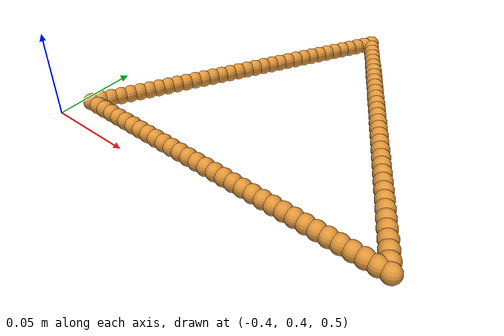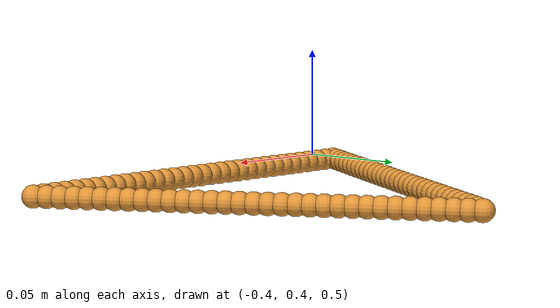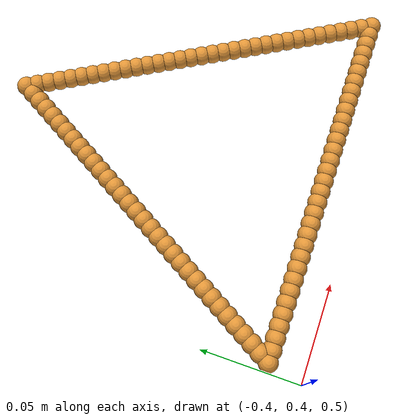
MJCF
<mujoco>
  <worldbody>

  <body name="triangle" pos="-0.30 0.50 0.50">
  <freejoint/>
  <inertial pos="0 0 0" mass="0.0040715040790523715" diaginertia="0.000013 0.000013 0.000017"/>
    <!-- 具有真实物理特性的空心三角形 -->
    <body name="triangle_frame" pos="0 0 0.0">
      <!-- 物理参数 -->
      <!-- 总质量: 0.0040715040790523715 kg -->
      <!-- 边长: 0.16 m -->
      <!-- 高度: 0.1386 m -->
      <!-- 对角线惯性张量: 0.000013 0.000013 0.000017 -->

      <!-- 三角形边框 (100个球体) -->
      <geom name="sphere_000" type="sphere" size="0.005" pos="0.000000 0.082272 0" rgba="0.89 0.59 0.22 1"/>
      <geom name="sphere_001" type="sphere" size="0.005" pos="-0.002879 0.077286 0" rgba="0.89 0.59 0.22 1"/>
      <geom name="sphere_002" type="sphere" size="0.005" pos="-0.005758 0.072300 0" rgba="0.89 0.59 0.22 1"/>
      <geom name="sphere_003" type="sphere" size="0.005" pos="-0.008636 0.067314 0" rgba="0.89 0.59 0.22 1"/>
      <geom name="sphere_004" type="sphere" size="0.005" pos="-0.011515 0.062328 0" rgba="0.89 0.59 0.22 1"/>
      <geom name="sphere_005" type="sphere" size="0.005" pos="-0.014394 0.057341 0" rgba="0.89 0.59 0.22 1"/>
      <geom name="sphere_006" type="sphere" size="0.005" pos="-0.017273 0.052355 0" rgba="0.89 0.59 0.22 1"/>
      <geom name="sphere_007" type="sphere" size="0.005" pos="-0.020152 0.047369 0" rgba="0.89 0.59 0.22 1"/>
      <geom name="sphere_008" type="sphere" size="0.005" pos="-0.023030 0.042383 0" rgba="0.89 0.59 0.22 1"/>
      <geom name="sphere_009" type="sphere" size="0.005" pos="-0.025909 0.037397 0" rgba="0.89 0.59 0.22 1"/>
      <geom name="sphere_010" type="sphere" size="0.005" pos="-0.028788 0.032410 0" rgba="0.89 0.59 0.22 1"/>
      <geom name="sphere_011" type="sphere" size="0.005" pos="-0.031667 0.027424 0" rgba="0.89 0.59 0.22 1"/>
      <geom name="sphere_012" type="sphere" size="0.005" pos="-0.034545 0.022438 0" rgba="0.89 0.59 0.22 1"/>
      <geom name="sphere_013" type="sphere" size="0.005" pos="-0.037424 0.017452 0" rgba="0.89 0.59 0.22 1"/>
      <geom name="sphere_014" type="sphere" size="0.005" pos="-0.040303 0.012466 0" rgba="0.89 0.59 0.22 1"/>
      <geom name="sphere_015" type="sphere" size="0.005" pos="-0.043182 0.007479 0" rgba="0.89 0.59 0.22 1"/>
      <geom name="sphere_016" type="sphere" size="0.005" pos="-0.046061 0.002493 0" rgba="0.89 0.59 0.22 1"/>
      <geom name="sphere_017" type="sphere" size="0.005" pos="-0.048939 -0.002493 0" rgba="0.89 0.59 0.22 1"/>
      <geom name="sphere_018" type="sphere" size="0.005" pos="-0.051818 -0.007479 0" rgba="0.89 0.59 0.22 1"/>
      <geom name="sphere_019" type="sphere" size="0.005" pos="-0.054697 -0.012466 0" rgba="0.89 0.59 0.22 1"/>
      <geom name="sphere_020" type="sphere" size="0.005" pos="-0.057576 -0.017452 0" rgba="0.89 0.59 0.22 1"/>
      <geom name="sphere_021" type="sphere" size="0.005" pos="-0.060455 -0.022438 0" rgba="0.89 0.59 0.22 1"/>
      <geom name="sphere_022" type="sphere" size="0.005" pos="-0.063333 -0.027424 0" rgba="0.89 0.59 0.22 1"/>
      <geom name="sphere_023" type="sphere" size="0.005" pos="-0.066212 -0.032410 0" rgba="0.89 0.59 0.22 1"/>
      <geom name="sphere_024" type="sphere" size="0.005" pos="-0.069091 -0.037397 0" rgba="0.89 0.59 0.22 1"/>
      <geom name="sphere_025" type="sphere" size="0.005" pos="-0.071970 -0.042383 0" rgba="0.89 0.59 0.22 1"/>
      <geom name="sphere_026" type="sphere" size="0.005" pos="-0.074848 -0.047369 0" rgba="0.89 0.59 0.22 1"/>
      <geom name="sphere_027" type="sphere" size="0.005" pos="-0.077727 -0.052355 0" rgba="0.89 0.59 0.22 1"/>
      <geom name="sphere_028" type="sphere" size="0.005" pos="-0.080606 -0.057341 0" rgba="0.89 0.59 0.22 1"/>
      <geom name="sphere_029" type="sphere" size="0.005" pos="-0.083485 -0.062328 0" rgba="0.89 0.59 0.22 1"/>
      <geom name="sphere_030" type="sphere" size="0.005" pos="-0.086364 -0.067314 0" rgba="0.89 0.59 0.22 1"/>
      <geom name="sphere_031" type="sphere" size="0.005" pos="-0.089242 -0.072300 0" rgba="0.89 0.59 0.22 1"/>
      <geom name="sphere_032" type="sphere" size="0.005" pos="-0.092121 -0.077286 0" rgba="0.89 0.59 0.22 1"/>
      <geom name="sphere_033" type="sphere" size="0.005" pos="-0.095000 -0.082272 0" rgba="0.89 0.59 0.22 1"/>
      <geom name="sphere_034" type="sphere" size="0.005" pos="-0.095000 -0.082272 0" rgba="0.89 0.59 0.22 1"/>
      <geom name="sphere_035" type="sphere" size="0.005" pos="-0.089063 -0.082272 0" rgba="0.89 0.59 0.22 1"/>
      <geom name="sphere_036" type="sphere" size="0.005" pos="-0.083125 -0.082272 0" rgba="0.89 0.59 0.22 1"/>
      <geom name="sphere_037" type="sphere" size="0.005" pos="-0.077187 -0.082272 0" rgba="0.89 0.59 0.22 1"/>
      <geom name="sphere_038" type="sphere" size="0.005" pos="-0.071250 -0.082272 0" rgba="0.89 0.59 0.22 1"/>
      <geom name="sphere_039" type="sphere" size="0.005" pos="-0.065312 -0.082272 0" rgba="0.89 0.59 0.22 1"/>
      <geom name="sphere_040" type="sphere" size="0.005" pos="-0.059375 -0.082272 0" rgba="0.89 0.59 0.22 1"/>
      <geom name="sphere_041" type="sphere" size="0.005" pos="-0.053437 -0.082272 0" rgba="0.89 0.59 0.22 1"/>
      <geom name="sphere_042" type="sphere" size="0.005" pos="-0.047500 -0.082272 0" rgba="0.89 0.59 0.22 1"/>
      <geom name="sphere_043" type="sphere" size="0.005" pos="-0.041563 -0.082272 0" rgba="0.89 0.59 0.22 1"/>
      <geom name="sphere_044" type="sphere" size="0.005" pos="-0.035625 -0.082272 0" rgba="0.89 0.59 0.22 1"/>
      <geom name="sphere_045" type="sphere" size="0.005" pos="-0.029688 -0.082272 0" rgba="0.89 0.59 0.22 1"/>
      <geom name="sphere_046" type="sphere" size="0.005" pos="-0.023750 -0.082272 0" rgba="0.89 0.59 0.22 1"/>
      <geom name="sphere_047" type="sphere" size="0.005" pos="-0.017812 -0.082272 0" rgba="0.89 0.59 0.22 1"/>
      <geom name="sphere_048" type="sphere" size="0.005" pos="-0.011875 -0.082272 0" rgba="0.89 0.59 0.22 1"/>
      <geom name="sphere_049" type="sphere" size="0.005" pos="-0.005937 -0.082272 0" rgba="0.89 0.59 0.22 1"/>
      <geom name="sphere_050" type="sphere" size="0.005" pos="0.000000 -0.082272 0" rgba="0.89 0.59 0.22 1"/>
      <geom name="sphere_051" type="sphere" size="0.005" pos="0.005937 -0.082272 0" rgba="0.89 0.59 0.22 1"/>
      <geom name="sphere_052" type="sphere" size="0.005" pos="0.011875 -0.082272 0" rgba="0.89 0.59 0.22 1"/>
      <geom name="sphere_053" type="sphere" size="0.005" pos="0.017812 -0.082272 0" rgba="0.89 0.59 0.22 1"/>
      <geom name="sphere_054" type="sphere" size="0.005" pos="0.023750 -0.082272 0" rgba="0.89 0.59 0.22 1"/>
      <geom name="sphere_055" type="sphere" size="0.005" pos="0.029688 -0.082272 0" rgba="0.89 0.59 0.22 1"/>
      <geom name="sphere_056" type="sphere" size="0.005" pos="0.035625 -0.082272 0" rgba="0.89 0.59 0.22 1"/>
      <geom name="sphere_057" type="sphere" size="0.005" pos="0.041563 -0.082272 0" rgba="0.89 0.59 0.22 1"/>
      <geom name="sphere_058" type="sphere" size="0.005" pos="0.047500 -0.082272 0" rgba="0.89 0.59 0.22 1"/>
      <geom name="sphere_059" type="sphere" size="0.005" pos="0.053437 -0.082272 0" rgba="0.89 0.59 0.22 1"/>
      <geom name="sphere_060" type="sphere" size="0.005" pos="0.059375 -0.082272 0" rgba="0.89 0.59 0.22 1"/>
      <geom name="sphere_061" type="sphere" size="0.005" pos="0.065312 -0.082272 0" rgba="0.89 0.59 0.22 1"/>
      <geom name="sphere_062" type="sphere" size="0.005" pos="0.071250 -0.082272 0" rgba="0.89 0.59 0.22 1"/>
      <geom name="sphere_063" type="sphere" size="0.005" pos="0.077187 -0.082272 0" rgba="0.89 0.59 0.22 1"/>
      <geom name="sphere_064" type="sphere" size="0.005" pos="0.083125 -0.082272 0" rgba="0.89 0.59 0.22 1"/>
      <geom name="sphere_065" type="sphere" size="0.005" pos="0.089062 -0.082272 0" rgba="0.89 0.59 0.22 1"/>
      <geom name="sphere_066" type="sphere" size="0.005" pos="0.095000 -0.082272 0" rgba="0.89 0.59 0.22 1"/>
      <geom name="sphere_067" type="sphere" size="0.005" pos="0.095000 -0.082272 0" rgba="0.89 0.59 0.22 1"/>
      <geom name="sphere_068" type="sphere" size="0.005" pos="0.092031 -0.077130 0" rgba="0.89 0.59 0.22 1"/>
      <geom name="sphere_069" type="sphere" size="0.005" pos="0.089063 -0.071988 0" rgba="0.89 0.59 0.22 1"/>
      <geom name="sphere_070" type="sphere" size="0.005" pos="0.086094 -0.066846 0" rgba="0.89 0.59 0.22 1"/>
      <geom name="sphere_071" type="sphere" size="0.005" pos="0.083125 -0.061704 0" rgba="0.89 0.59 0.22 1"/>
      <geom name="sphere_072" type="sphere" size="0.005" pos="0.080156 -0.056562 0" rgba="0.89 0.59 0.22 1"/>
      <geom name="sphere_073" type="sphere" size="0.005" pos="0.077187 -0.051420 0" rgba="0.89 0.59 0.22 1"/>
      <geom name="sphere_074" type="sphere" size="0.005" pos="0.074219 -0.046278 0" rgba="0.89 0.59 0.22 1"/>
      <geom name="sphere_075" type="sphere" size="0.005" pos="0.071250 -0.041136 0" rgba="0.89 0.59 0.22 1"/>
      <geom name="sphere_076" type="sphere" size="0.005" pos="0.068281 -0.035994 0" rgba="0.89 0.59 0.22 1"/>
      <geom name="sphere_077" type="sphere" size="0.005" pos="0.065312 -0.030852 0" rgba="0.89 0.59 0.22 1"/>
      <geom name="sphere_078" type="sphere" size="0.005" pos="0.062344 -0.025710 0" rgba="0.89 0.59 0.22 1"/>
      <geom name="sphere_079" type="sphere" size="0.005" pos="0.059375 -0.020568 0" rgba="0.89 0.59 0.22 1"/>
      <geom name="sphere_080" type="sphere" size="0.005" pos="0.056406 -0.015426 0" rgba="0.89 0.59 0.22 1"/>
      <geom name="sphere_081" type="sphere" size="0.005" pos="0.053437 -0.010284 0" rgba="0.89 0.59 0.22 1"/>
      <geom name="sphere_082" type="sphere" size="0.005" pos="0.050469 -0.005142 0" rgba="0.89 0.59 0.22 1"/>
      <geom name="sphere_083" type="sphere" size="0.005" pos="0.047500 0.000000 0" rgba="0.89 0.59 0.22 1"/>
      <geom name="sphere_084" type="sphere" size="0.005" pos="0.044531 0.005142 0" rgba="0.89 0.59 0.22 1"/>
      <geom name="sphere_085" type="sphere" size="0.005" pos="0.041563 0.010284 0" rgba="0.89 0.59 0.22 1"/>
      <geom name="sphere_086" type="sphere" size="0.005" pos="0.038594 0.015426 0" rgba="0.89 0.59 0.22 1"/>
      <geom name="sphere_087" type="sphere" size="0.005" pos="0.035625 0.020568 0" rgba="0.89 0.59 0.22 1"/>
      <geom name="sphere_088" type="sphere" size="0.005" pos="0.032656 0.025710 0" rgba="0.89 0.59 0.22 1"/>
      <geom name="sphere_089" type="sphere" size="0.005" pos="0.029688 0.030852 0" rgba="0.89 0.59 0.22 1"/>
      <geom name="sphere_090" type="sphere" size="0.005" pos="0.026719 0.035994 0" rgba="0.89 0.59 0.22 1"/>
      <geom name="sphere_091" type="sphere" size="0.005" pos="0.023750 0.041136 0" rgba="0.89 0.59 0.22 1"/>
      <geom name="sphere_092" type="sphere" size="0.005" pos="0.020781 0.046278 0" rgba="0.89 0.59 0.22 1"/>
      <geom name="sphere_093" type="sphere" size="0.005" pos="0.017812 0.051420 0" rgba="0.89 0.59 0.22 1"/>
      <geom name="sphere_094" type="sphere" size="0.005" pos="0.014844 0.056562 0" rgba="0.89 0.59 0.22 1"/>
      <geom name="sphere_095" type="sphere" size="0.005" pos="0.011875 0.061704 0" rgba="0.89 0.59 0.22 1"/>
      <geom name="sphere_096" type="sphere" size="0.005" pos="0.008906 0.066846 0" rgba="0.89 0.59 0.22 1"/>
      <geom name="sphere_097" type="sphere" size="0.005" pos="0.005937 0.071988 0" rgba="0.89 0.59 0.22 1"/>
      <geom name="sphere_098" type="sphere" size="0.005" pos="0.002969 0.077130 0" rgba="0.89 0.59 0.22 1"/>
      <geom name="sphere_099" type="sphere" size="0.005" pos="0.000000 0.082272 0" rgba="0.89 0.59 0.22 1"/>
    </body>
    </body>

  </worldbody>

</mujoco>
